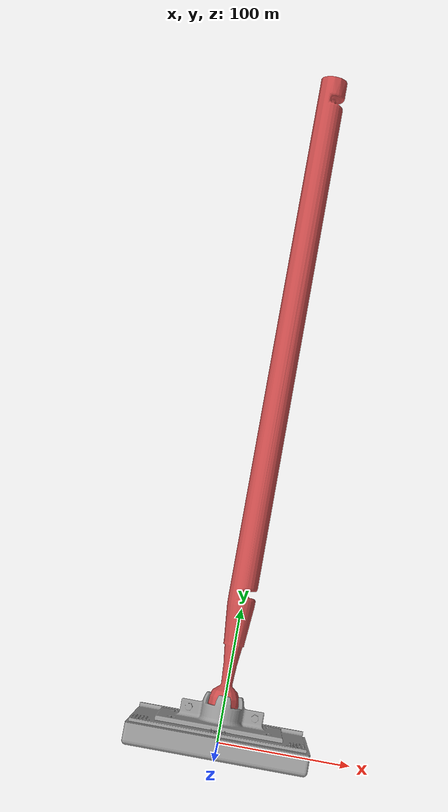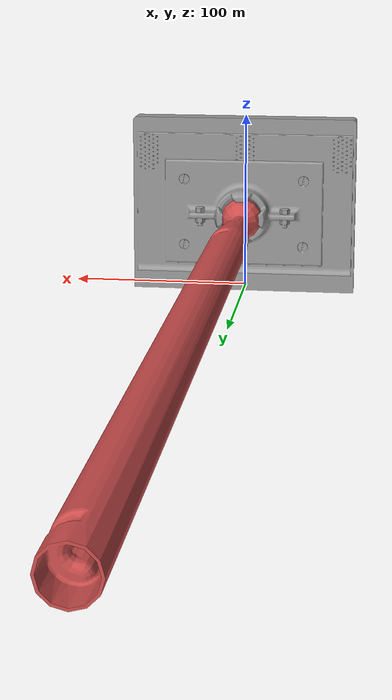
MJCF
<mujoco model="mop_with_handle">
    <compiler angle="degree" coordinate="local"/>
    <option gravity="0 0 -9.81" timestep="0.05"/>

    <!-- Assets: load STL meshes -->
    <asset>
        <!-- Base -->
        <mesh name="base_mesh" file="mopppp_base_ballhorder.STL" scale="1 1 1"/>
        <!-- Handle -->
        <mesh name="handle_mesh" file="Lower part of handle.STL" scale="1 1 1"/>
    </asset>

    <!-- Default physics properties -->
    <default>
        <geom contype="1" conaffinity="1" density="500" friction="0.8 0.1 0.1"/>
        <joint limited="true" damping="0.01"/>
    </default>

    <!-- World body -->
    <worldbody>
        <!-- Base body -->
        <body name="base" pos="0 0 0">
            <geom type="mesh" mesh="base_mesh" rgba="0.6 0.6 0.6 1"/>

            <!-- Handle body connected with ball joint -->
            <body name="handle" pos="-0.7 35 46">
                <joint name="handle_joint" type="ball" range="0 0"/>
                <geom type="mesh" mesh="handle_mesh" rgba="0.8 0.3 0.3 1"/>
            </body>
        </body>
    </worldbody>

    <!-- Actuators to control the handle manually -->
    <actuator>
        <!-- 3 motors = control in x, y, z rotation -->
        <motor joint="handle_joint" ctrlrange="-1 1" gear="1"/>
        <motor joint="handle_joint" ctrlrange="-1 1" gear="1"/>
        <motor joint="handle_joint" ctrlrange="-1 1" gear="1"/>
    </actuator>
</mujoco>
